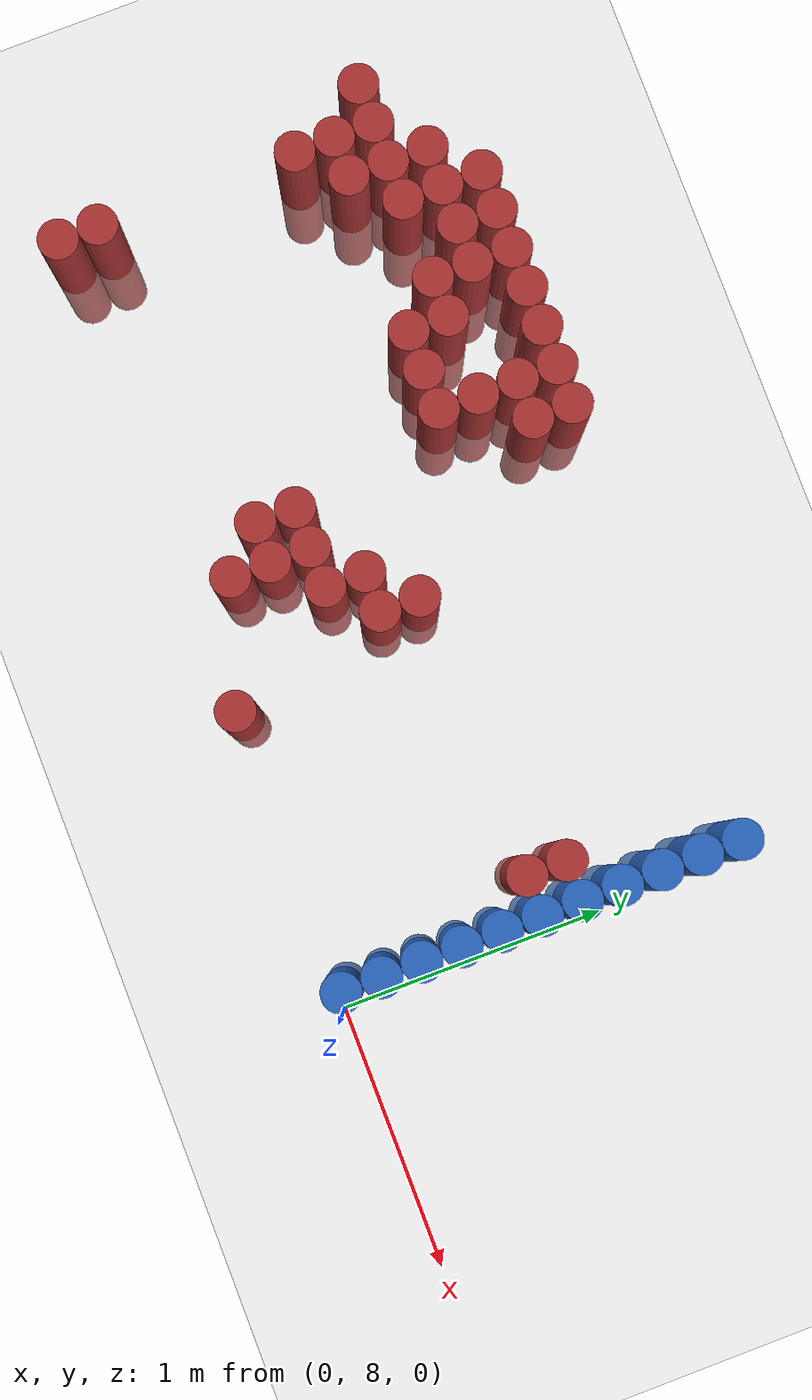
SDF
<sdf version="1.6">
 <world name="default">
  <model name="ground_plane">
   <static>1</static>
   <link name="link">
    <collision name="collision">
     <geometry><plane><normal>0 0 1</normal><size>100 100</size></plane></geometry>
     <surface><friction><ode><mu>100</mu><mu2>50</mu2></ode></friction></surface>
    </collision>
    <visual name="visual">
     <cast_shadows>0</cast_shadows>
     <geometry><plane><normal>0 0 1</normal><size>100 100</size></plane></geometry>
     <material>
      <script><uri>file://media/materials/scripts/gazebo.material</uri><name>Gazebo/Grey</name></script>
     </material>
    </visual>
   </link>
  </model>
  <model name="unit_cylinder_233">
   <static>1</static>
   <pose>-3.075000 9.225000 0.000000 0.000000 0.000000 0.000000</pose>
   <link name="link">
    <inertial>
     <mass>1</mass>
     <inertia><ixx>0.145833</ixx><ixy>0</ixy><ixz>0</ixz><iyy>0.145833</iyy><iyz>0</iyz><izz>0.125</izz></inertia>
    </inertial>
    <collision name="collision">
     <geometry><cylinder><radius>0.075000</radius><length>1</length></cylinder></geometry>
    </collision>
    <visual name="visual">
     <geometry><cylinder><radius>0.075000</radius><length>1</length></cylinder></geometry>
     <material>
      <ambient>0.648000 0.192000 0.192000 1</ambient>
      <diffuse>0.648000 0.192000 0.192000 1</diffuse>
     </material>
     <material>
      <script><name>Gazebo/Grey</name><uri>file://media/materials/scripts/gazebo.material</uri></script>
     </material>
    </visual>
   </link>
  </model>
  <model name="unit_cylinder_244">
   <static>1</static>
   <pose>-2.925000 8.025000 0.000000 0.000000 0.000000 0.000000</pose>
   <link name="link">
    <inertial>
     <mass>1</mass>
     <inertia><ixx>0.145833</ixx><ixy>0</ixy><ixz>0</ixz><iyy>0.145833</iyy><iyz>0</iyz><izz>0.125</izz></inertia>
    </inertial>
    <collision name="collision">
     <geometry><cylinder><radius>0.075000</radius><length>1</length></cylinder></geometry>
    </collision>
    <visual name="visual">
     <geometry><cylinder><radius>0.075000</radius><length>1</length></cylinder></geometry>
     <material>
      <ambient>0.648000 0.192000 0.192000 1</ambient>
      <diffuse>0.648000 0.192000 0.192000 1</diffuse>
     </material>
     <material>
      <script><name>Gazebo/Grey</name><uri>file://media/materials/scripts/gazebo.material</uri></script>
     </material>
    </visual>
   </link>
  </model>
  <model name="unit_cylinder_245">
   <static>1</static>
   <pose>-2.925000 8.175000 0.000000 0.000000 0.000000 0.000000</pose>
   <link name="link">
    <inertial>
     <mass>1</mass>
     <inertia><ixx>0.145833</ixx><ixy>0</ixy><ixz>0</ixz><iyy>0.145833</iyy><iyz>0</iyz><izz>0.125</izz></inertia>
    </inertial>
    <collision name="collision">
     <geometry><cylinder><radius>0.075000</radius><length>1</length></cylinder></geometry>
    </collision>
    <visual name="visual">
     <geometry><cylinder><radius>0.075000</radius><length>1</length></cylinder></geometry>
     <material>
      <ambient>0.648000 0.192000 0.192000 1</ambient>
      <diffuse>0.648000 0.192000 0.192000 1</diffuse>
     </material>
     <material>
      <script><name>Gazebo/Grey</name><uri>file://media/materials/scripts/gazebo.material</uri></script>
     </material>
    </visual>
   </link>
  </model>
  <model name="unit_cylinder_246">
   <static>1</static>
   <pose>-2.925000 8.925000 0.000000 0.000000 0.000000 0.000000</pose>
   <link name="link">
    <inertial>
     <mass>1</mass>
     <inertia><ixx>0.145833</ixx><ixy>0</ixy><ixz>0</ixz><iyy>0.145833</iyy><iyz>0</iyz><izz>0.125</izz></inertia>
    </inertial>
    <collision name="collision">
     <geometry><cylinder><radius>0.075000</radius><length>1</length></cylinder></geometry>
    </collision>
    <visual name="visual">
     <geometry><cylinder><radius>0.075000</radius><length>1</length></cylinder></geometry>
     <material>
      <ambient>0.648000 0.192000 0.192000 1</ambient>
      <diffuse>0.648000 0.192000 0.192000 1</diffuse>
     </material>
     <material>
      <script><name>Gazebo/Grey</name><uri>file://media/materials/scripts/gazebo.material</uri></script>
     </material>
    </visual>
   </link>
  </model>
  <model name="unit_cylinder_247">
   <static>1</static>
   <pose>-2.925000 9.075000 0.000000 0.000000 0.000000 0.000000</pose>
   <link name="link">
    <inertial>
     <mass>1</mass>
     <inertia><ixx>0.145833</ixx><ixy>0</ixy><ixz>0</ixz><iyy>0.145833</iyy><iyz>0</iyz><izz>0.125</izz></inertia>
    </inertial>
    <collision name="collision">
     <geometry><cylinder><radius>0.075000</radius><length>1</length></cylinder></geometry>
    </collision>
    <visual name="visual">
     <geometry><cylinder><radius>0.075000</radius><length>1</length></cylinder></geometry>
     <material>
      <ambient>0.648000 0.192000 0.192000 1</ambient>
      <diffuse>0.648000 0.192000 0.192000 1</diffuse>
     </material>
     <material>
      <script><name>Gazebo/Grey</name><uri>file://media/materials/scripts/gazebo.material</uri></script>
     </material>
    </visual>
   </link>
  </model>
  <model name="unit_cylinder_248">
   <static>1</static>
   <pose>-2.925000 9.225000 0.000000 0.000000 0.000000 0.000000</pose>
   <link name="link">
    <inertial>
     <mass>1</mass>
     <inertia><ixx>0.145833</ixx><ixy>0</ixy><ixz>0</ixz><iyy>0.145833</iyy><iyz>0</iyz><izz>0.125</izz></inertia>
    </inertial>
    <collision name="collision">
     <geometry><cylinder><radius>0.075000</radius><length>1</length></cylinder></geometry>
    </collision>
    <visual name="visual">
     <geometry><cylinder><radius>0.075000</radius><length>1</length></cylinder></geometry>
     <material>
      <ambient>0.648000 0.192000 0.192000 1</ambient>
      <diffuse>0.648000 0.192000 0.192000 1</diffuse>
     </material>
     <material>
      <script><name>Gazebo/Grey</name><uri>file://media/materials/scripts/gazebo.material</uri></script>
     </material>
    </visual>
   </link>
  </model>
  <model name="unit_cylinder_254">
   <static>1</static>
   <pose>-2.775000 9.075000 0.000000 0.000000 0.000000 0.000000</pose>
   <link name="link">
    <inertial>
     <mass>1</mass>
     <inertia><ixx>0.145833</ixx><ixy>0</ixy><ixz>0</ixz><iyy>0.145833</iyy><iyz>0</iyz><izz>0.125</izz></inertia>
    </inertial>
    <collision name="collision">
     <geometry><cylinder><radius>0.075000</radius><length>1</length></cylinder></geometry>
    </collision>
    <visual name="visual">
     <geometry><cylinder><radius>0.075000</radius><length>1</length></cylinder></geometry>
     <material>
      <ambient>0.648000 0.192000 0.192000 1</ambient>
      <diffuse>0.648000 0.192000 0.192000 1</diffuse>
     </material>
     <material>
      <script><name>Gazebo/Grey</name><uri>file://media/materials/scripts/gazebo.material</uri></script>
     </material>
    </visual>
   </link>
  </model>
  <model name="unit_cylinder_255">
   <static>1</static>
   <pose>-2.775000 9.225000 0.000000 0.000000 0.000000 0.000000</pose>
   <link name="link">
    <inertial>
     <mass>1</mass>
     <inertia><ixx>0.145833</ixx><ixy>0</ixy><ixz>0</ixz><iyy>0.145833</iyy><iyz>0</iyz><izz>0.125</izz></inertia>
    </inertial>
    <collision name="collision">
     <geometry><cylinder><radius>0.075000</radius><length>1</length></cylinder></geometry>
    </collision>
    <visual name="visual">
     <geometry><cylinder><radius>0.075000</radius><length>1</length></cylinder></geometry>
     <material>
      <ambient>0.648000 0.192000 0.192000 1</ambient>
      <diffuse>0.648000 0.192000 0.192000 1</diffuse>
     </material>
     <material>
      <script><name>Gazebo/Grey</name><uri>file://media/materials/scripts/gazebo.material</uri></script>
     </material>
    </visual>
   </link>
  </model>
  <model name="unit_cylinder_256">
   <static>1</static>
   <pose>-2.775000 9.375000 0.000000 0.000000 0.000000 0.000000</pose>
   <link name="link">
    <inertial>
     <mass>1</mass>
     <inertia><ixx>0.145833</ixx><ixy>0</ixy><ixz>0</ixz><iyy>0.145833</iyy><iyz>0</iyz><izz>0.125</izz></inertia>
    </inertial>
    <collision name="collision">
     <geometry><cylinder><radius>0.075000</radius><length>1</length></cylinder></geometry>
    </collision>
    <visual name="visual">
     <geometry><cylinder><radius>0.075000</radius><length>1</length></cylinder></geometry>
     <material>
      <ambient>0.648000 0.192000 0.192000 1</ambient>
      <diffuse>0.648000 0.192000 0.192000 1</diffuse>
     </material>
     <material>
      <script><name>Gazebo/Grey</name><uri>file://media/materials/scripts/gazebo.material</uri></script>
     </material>
    </visual>
   </link>
  </model>
  <model name="unit_cylinder_260">
   <static>1</static>
   <pose>-2.625000 9.225000 0.000000 0.000000 0.000000 0.000000</pose>
   <link name="link">
    <inertial>
     <mass>1</mass>
     <inertia><ixx>0.145833</ixx><ixy>0</ixy><ixz>0</ixz><iyy>0.145833</iyy><iyz>0</iyz><izz>0.125</izz></inertia>
    </inertial>
    <collision name="collision">
     <geometry><cylinder><radius>0.075000</radius><length>1</length></cylinder></geometry>
    </collision>
    <visual name="visual">
     <geometry><cylinder><radius>0.075000</radius><length>1</length></cylinder></geometry>
     <material>
      <ambient>0.648000 0.192000 0.192000 1</ambient>
      <diffuse>0.648000 0.192000 0.192000 1</diffuse>
     </material>
     <material>
      <script><name>Gazebo/Grey</name><uri>file://media/materials/scripts/gazebo.material</uri></script>
     </material>
    </visual>
   </link>
  </model>
  <model name="unit_cylinder_261">
   <static>1</static>
   <pose>-2.625000 9.375000 0.000000 0.000000 0.000000 0.000000</pose>
   <link name="link">
    <inertial>
     <mass>1</mass>
     <inertia><ixx>0.145833</ixx><ixy>0</ixy><ixz>0</ixz><iyy>0.145833</iyy><iyz>0</iyz><izz>0.125</izz></inertia>
    </inertial>
    <collision name="collision">
     <geometry><cylinder><radius>0.075000</radius><length>1</length></cylinder></geometry>
    </collision>
    <visual name="visual">
     <geometry><cylinder><radius>0.075000</radius><length>1</length></cylinder></geometry>
     <material>
      <ambient>0.648000 0.192000 0.192000 1</ambient>
      <diffuse>0.648000 0.192000 0.192000 1</diffuse>
     </material>
     <material>
      <script><name>Gazebo/Grey</name><uri>file://media/materials/scripts/gazebo.material</uri></script>
     </material>
    </visual>
   </link>
  </model>
  <model name="unit_cylinder_262">
   <static>1</static>
   <pose>-2.625000 9.525000 0.000000 0.000000 0.000000 0.000000</pose>
   <link name="link">
    <inertial>
     <mass>1</mass>
     <inertia><ixx>0.145833</ixx><ixy>0</ixy><ixz>0</ixz><iyy>0.145833</iyy><iyz>0</iyz><izz>0.125</izz></inertia>
    </inertial>
    <collision name="collision">
     <geometry><cylinder><radius>0.075000</radius><length>1</length></cylinder></geometry>
    </collision>
    <visual name="visual">
     <geometry><cylinder><radius>0.075000</radius><length>1</length></cylinder></geometry>
     <material>
      <ambient>0.648000 0.192000 0.192000 1</ambient>
      <diffuse>0.648000 0.192000 0.192000 1</diffuse>
     </material>
     <material>
      <script><name>Gazebo/Grey</name><uri>file://media/materials/scripts/gazebo.material</uri></script>
     </material>
    </visual>
   </link>
  </model>
  <model name="unit_cylinder_266">
   <static>1</static>
   <pose>-2.475000 9.375000 0.000000 0.000000 0.000000 0.000000</pose>
   <link name="link">
    <inertial>
     <mass>1</mass>
     <inertia><ixx>0.145833</ixx><ixy>0</ixy><ixz>0</ixz><iyy>0.145833</iyy><iyz>0</iyz><izz>0.125</izz></inertia>
    </inertial>
    <collision name="collision">
     <geometry><cylinder><radius>0.075000</radius><length>1</length></cylinder></geometry>
    </collision>
    <visual name="visual">
     <geometry><cylinder><radius>0.075000</radius><length>1</length></cylinder></geometry>
     <material>
      <ambient>0.648000 0.192000 0.192000 1</ambient>
      <diffuse>0.648000 0.192000 0.192000 1</diffuse>
     </material>
     <material>
      <script><name>Gazebo/Grey</name><uri>file://media/materials/scripts/gazebo.material</uri></script>
     </material>
    </visual>
   </link>
  </model>
  <model name="unit_cylinder_267">
   <static>1</static>
   <pose>-2.475000 9.525000 0.000000 0.000000 0.000000 0.000000</pose>
   <link name="link">
    <inertial>
     <mass>1</mass>
     <inertia><ixx>0.145833</ixx><ixy>0</ixy><ixz>0</ixz><iyy>0.145833</iyy><iyz>0</iyz><izz>0.125</izz></inertia>
    </inertial>
    <collision name="collision">
     <geometry><cylinder><radius>0.075000</radius><length>1</length></cylinder></geometry>
    </collision>
    <visual name="visual">
     <geometry><cylinder><radius>0.075000</radius><length>1</length></cylinder></geometry>
     <material>
      <ambient>0.648000 0.192000 0.192000 1</ambient>
      <diffuse>0.648000 0.192000 0.192000 1</diffuse>
     </material>
     <material>
      <script><name>Gazebo/Grey</name><uri>file://media/materials/scripts/gazebo.material</uri></script>
     </material>
    </visual>
   </link>
  </model>
  <model name="unit_cylinder_270">
   <static>1</static>
   <pose>-2.325000 9.225000 0.000000 0.000000 0.000000 0.000000</pose>
   <link name="link">
    <inertial>
     <mass>1</mass>
     <inertia><ixx>0.145833</ixx><ixy>0</ixy><ixz>0</ixz><iyy>0.145833</iyy><iyz>0</iyz><izz>0.125</izz></inertia>
    </inertial>
    <collision name="collision">
     <geometry><cylinder><radius>0.075000</radius><length>1</length></cylinder></geometry>
    </collision>
    <visual name="visual">
     <geometry><cylinder><radius>0.075000</radius><length>1</length></cylinder></geometry>
     <material>
      <ambient>0.648000 0.192000 0.192000 1</ambient>
      <diffuse>0.648000 0.192000 0.192000 1</diffuse>
     </material>
     <material>
      <script><name>Gazebo/Grey</name><uri>file://media/materials/scripts/gazebo.material</uri></script>
     </material>
    </visual>
   </link>
  </model>
  <model name="unit_cylinder_271">
   <static>1</static>
   <pose>-2.325000 9.375000 0.000000 0.000000 0.000000 0.000000</pose>
   <link name="link">
    <inertial>
     <mass>1</mass>
     <inertia><ixx>0.145833</ixx><ixy>0</ixy><ixz>0</ixz><iyy>0.145833</iyy><iyz>0</iyz><izz>0.125</izz></inertia>
    </inertial>
    <collision name="collision">
     <geometry><cylinder><radius>0.075000</radius><length>1</length></cylinder></geometry>
    </collision>
    <visual name="visual">
     <geometry><cylinder><radius>0.075000</radius><length>1</length></cylinder></geometry>
     <material>
      <ambient>0.648000 0.192000 0.192000 1</ambient>
      <diffuse>0.648000 0.192000 0.192000 1</diffuse>
     </material>
     <material>
      <script><name>Gazebo/Grey</name><uri>file://media/materials/scripts/gazebo.material</uri></script>
     </material>
    </visual>
   </link>
  </model>
  <model name="unit_cylinder_272">
   <static>1</static>
   <pose>-2.325000 9.525000 0.000000 0.000000 0.000000 0.000000</pose>
   <link name="link">
    <inertial>
     <mass>1</mass>
     <inertia><ixx>0.145833</ixx><ixy>0</ixy><ixz>0</ixz><iyy>0.145833</iyy><iyz>0</iyz><izz>0.125</izz></inertia>
    </inertial>
    <collision name="collision">
     <geometry><cylinder><radius>0.075000</radius><length>1</length></cylinder></geometry>
    </collision>
    <visual name="visual">
     <geometry><cylinder><radius>0.075000</radius><length>1</length></cylinder></geometry>
     <material>
      <ambient>0.648000 0.192000 0.192000 1</ambient>
      <diffuse>0.648000 0.192000 0.192000 1</diffuse>
     </material>
     <material>
      <script><name>Gazebo/Grey</name><uri>file://media/materials/scripts/gazebo.material</uri></script>
     </material>
    </visual>
   </link>
  </model>
  <model name="unit_cylinder_274">
   <static>1</static>
   <pose>-2.175000 9.075000 0.000000 0.000000 0.000000 0.000000</pose>
   <link name="link">
    <inertial>
     <mass>1</mass>
     <inertia><ixx>0.145833</ixx><ixy>0</ixy><ixz>0</ixz><iyy>0.145833</iyy><iyz>0</iyz><izz>0.125</izz></inertia>
    </inertial>
    <collision name="collision">
     <geometry><cylinder><radius>0.075000</radius><length>1</length></cylinder></geometry>
    </collision>
    <visual name="visual">
     <geometry><cylinder><radius>0.075000</radius><length>1</length></cylinder></geometry>
     <material>
      <ambient>0.648000 0.192000 0.192000 1</ambient>
      <diffuse>0.648000 0.192000 0.192000 1</diffuse>
     </material>
     <material>
      <script><name>Gazebo/Grey</name><uri>file://media/materials/scripts/gazebo.material</uri></script>
     </material>
    </visual>
   </link>
  </model>
  <model name="unit_cylinder_275">
   <static>1</static>
   <pose>-2.175000 9.225000 0.000000 0.000000 0.000000 0.000000</pose>
   <link name="link">
    <inertial>
     <mass>1</mass>
     <inertia><ixx>0.145833</ixx><ixy>0</ixy><ixz>0</ixz><iyy>0.145833</iyy><iyz>0</iyz><izz>0.125</izz></inertia>
    </inertial>
    <collision name="collision">
     <geometry><cylinder><radius>0.075000</radius><length>1</length></cylinder></geometry>
    </collision>
    <visual name="visual">
     <geometry><cylinder><radius>0.075000</radius><length>1</length></cylinder></geometry>
     <material>
      <ambient>0.648000 0.192000 0.192000 1</ambient>
      <diffuse>0.648000 0.192000 0.192000 1</diffuse>
     </material>
     <material>
      <script><name>Gazebo/Grey</name><uri>file://media/materials/scripts/gazebo.material</uri></script>
     </material>
    </visual>
   </link>
  </model>
  <model name="unit_cylinder_276">
   <static>1</static>
   <pose>-2.175000 9.525000 0.000000 0.000000 0.000000 0.000000</pose>
   <link name="link">
    <inertial>
     <mass>1</mass>
     <inertia><ixx>0.145833</ixx><ixy>0</ixy><ixz>0</ixz><iyy>0.145833</iyy><iyz>0</iyz><izz>0.125</izz></inertia>
    </inertial>
    <collision name="collision">
     <geometry><cylinder><radius>0.075000</radius><length>1</length></cylinder></geometry>
    </collision>
    <visual name="visual">
     <geometry><cylinder><radius>0.075000</radius><length>1</length></cylinder></geometry>
     <material>
      <ambient>0.648000 0.192000 0.192000 1</ambient>
      <diffuse>0.648000 0.192000 0.192000 1</diffuse>
     </material>
     <material>
      <script><name>Gazebo/Grey</name><uri>file://media/materials/scripts/gazebo.material</uri></script>
     </material>
    </visual>
   </link>
  </model>
  <model name="unit_cylinder_280">
   <static>1</static>
   <pose>-2.025000 9.075000 0.000000 0.000000 0.000000 0.000000</pose>
   <link name="link">
    <inertial>
     <mass>1</mass>
     <inertia><ixx>0.145833</ixx><ixy>0</ixy><ixz>0</ixz><iyy>0.145833</iyy><iyz>0</iyz><izz>0.125</izz></inertia>
    </inertial>
    <collision name="collision">
     <geometry><cylinder><radius>0.075000</radius><length>1</length></cylinder></geometry>
    </collision>
    <visual name="visual">
     <geometry><cylinder><radius>0.075000</radius><length>1</length></cylinder></geometry>
     <material>
      <ambient>0.648000 0.192000 0.192000 1</ambient>
      <diffuse>0.648000 0.192000 0.192000 1</diffuse>
     </material>
     <material>
      <script><name>Gazebo/Grey</name><uri>file://media/materials/scripts/gazebo.material</uri></script>
     </material>
    </visual>
   </link>
  </model>
  <model name="unit_cylinder_281">
   <static>1</static>
   <pose>-2.025000 9.525000 0.000000 0.000000 0.000000 0.000000</pose>
   <link name="link">
    <inertial>
     <mass>1</mass>
     <inertia><ixx>0.145833</ixx><ixy>0</ixy><ixz>0</ixz><iyy>0.145833</iyy><iyz>0</iyz><izz>0.125</izz></inertia>
    </inertial>
    <collision name="collision">
     <geometry><cylinder><radius>0.075000</radius><length>1</length></cylinder></geometry>
    </collision>
    <visual name="visual">
     <geometry><cylinder><radius>0.075000</radius><length>1</length></cylinder></geometry>
     <material>
      <ambient>0.648000 0.192000 0.192000 1</ambient>
      <diffuse>0.648000 0.192000 0.192000 1</diffuse>
     </material>
     <material>
      <script><name>Gazebo/Grey</name><uri>file://media/materials/scripts/gazebo.material</uri></script>
     </material>
    </visual>
   </link>
  </model>
  <model name="unit_cylinder_286">
   <static>1</static>
   <pose>-1.875000 9.075000 0.000000 0.000000 0.000000 0.000000</pose>
   <link name="link">
    <inertial>
     <mass>1</mass>
     <inertia><ixx>0.145833</ixx><ixy>0</ixy><ixz>0</ixz><iyy>0.145833</iyy><iyz>0</iyz><izz>0.125</izz></inertia>
    </inertial>
    <collision name="collision">
     <geometry><cylinder><radius>0.075000</radius><length>1</length></cylinder></geometry>
    </collision>
    <visual name="visual">
     <geometry><cylinder><radius>0.075000</radius><length>1</length></cylinder></geometry>
     <material>
      <ambient>0.648000 0.192000 0.192000 1</ambient>
      <diffuse>0.648000 0.192000 0.192000 1</diffuse>
     </material>
     <material>
      <script><name>Gazebo/Grey</name><uri>file://media/materials/scripts/gazebo.material</uri></script>
     </material>
    </visual>
   </link>
  </model>
  <model name="unit_cylinder_287">
   <static>1</static>
   <pose>-1.875000 9.225000 0.000000 0.000000 0.000000 0.000000</pose>
   <link name="link">
    <inertial>
     <mass>1</mass>
     <inertia><ixx>0.145833</ixx><ixy>0</ixy><ixz>0</ixz><iyy>0.145833</iyy><iyz>0</iyz><izz>0.125</izz></inertia>
    </inertial>
    <collision name="collision">
     <geometry><cylinder><radius>0.075000</radius><length>1</length></cylinder></geometry>
    </collision>
    <visual name="visual">
     <geometry><cylinder><radius>0.075000</radius><length>1</length></cylinder></geometry>
     <material>
      <ambient>0.648000 0.192000 0.192000 1</ambient>
      <diffuse>0.648000 0.192000 0.192000 1</diffuse>
     </material>
     <material>
      <script><name>Gazebo/Grey</name><uri>file://media/materials/scripts/gazebo.material</uri></script>
     </material>
    </visual>
   </link>
  </model>
  <model name="unit_cylinder_288">
   <static>1</static>
   <pose>-1.875000 9.375000 0.000000 0.000000 0.000000 0.000000</pose>
   <link name="link">
    <inertial>
     <mass>1</mass>
     <inertia><ixx>0.145833</ixx><ixy>0</ixy><ixz>0</ixz><iyy>0.145833</iyy><iyz>0</iyz><izz>0.125</izz></inertia>
    </inertial>
    <collision name="collision">
     <geometry><cylinder><radius>0.075000</radius><length>1</length></cylinder></geometry>
    </collision>
    <visual name="visual">
     <geometry><cylinder><radius>0.075000</radius><length>1</length></cylinder></geometry>
     <material>
      <ambient>0.648000 0.192000 0.192000 1</ambient>
      <diffuse>0.648000 0.192000 0.192000 1</diffuse>
     </material>
     <material>
      <script><name>Gazebo/Grey</name><uri>file://media/materials/scripts/gazebo.material</uri></script>
     </material>
    </visual>
   </link>
  </model>
  <model name="unit_cylinder_289">
   <static>1</static>
   <pose>-1.875000 9.525000 0.000000 0.000000 0.000000 0.000000</pose>
   <link name="link">
    <inertial>
     <mass>1</mass>
     <inertia><ixx>0.145833</ixx><ixy>0</ixy><ixz>0</ixz><iyy>0.145833</iyy><iyz>0</iyz><izz>0.125</izz></inertia>
    </inertial>
    <collision name="collision">
     <geometry><cylinder><radius>0.075000</radius><length>1</length></cylinder></geometry>
    </collision>
    <visual name="visual">
     <geometry><cylinder><radius>0.075000</radius><length>1</length></cylinder></geometry>
     <material>
      <ambient>0.648000 0.192000 0.192000 1</ambient>
      <diffuse>0.648000 0.192000 0.192000 1</diffuse>
     </material>
     <material>
      <script><name>Gazebo/Grey</name><uri>file://media/materials/scripts/gazebo.material</uri></script>
     </material>
    </visual>
   </link>
  </model>
  <model name="unit_cylinder_293">
   <static>1</static>
   <pose>-1.725000 8.325000 0.000000 0.000000 0.000000 0.000000</pose>
   <link name="link">
    <inertial>
     <mass>1</mass>
     <inertia><ixx>0.145833</ixx><ixy>0</ixy><ixz>0</ixz><iyy>0.145833</iyy><iyz>0</iyz><izz>0.125</izz></inertia>
    </inertial>
    <collision name="collision">
     <geometry><cylinder><radius>0.075000</radius><length>1</length></cylinder></geometry>
    </collision>
    <visual name="visual">
     <geometry><cylinder><radius>0.075000</radius><length>1</length></cylinder></geometry>
     <material>
      <ambient>0.648000 0.192000 0.192000 1</ambient>
      <diffuse>0.648000 0.192000 0.192000 1</diffuse>
     </material>
     <material>
      <script><name>Gazebo/Grey</name><uri>file://media/materials/scripts/gazebo.material</uri></script>
     </material>
    </visual>
   </link>
  </model>
  <model name="unit_cylinder_294">
   <static>1</static>
   <pose>-1.725000 8.475000 0.000000 0.000000 0.000000 0.000000</pose>
   <link name="link">
    <inertial>
     <mass>1</mass>
     <inertia><ixx>0.145833</ixx><ixy>0</ixy><ixz>0</ixz><iyy>0.145833</iyy><iyz>0</iyz><izz>0.125</izz></inertia>
    </inertial>
    <collision name="collision">
     <geometry><cylinder><radius>0.075000</radius><length>1</length></cylinder></geometry>
    </collision>
    <visual name="visual">
     <geometry><cylinder><radius>0.075000</radius><length>1</length></cylinder></geometry>
     <material>
      <ambient>0.648000 0.192000 0.192000 1</ambient>
      <diffuse>0.648000 0.192000 0.192000 1</diffuse>
     </material>
     <material>
      <script><name>Gazebo/Grey</name><uri>file://media/materials/scripts/gazebo.material</uri></script>
     </material>
    </visual>
   </link>
  </model>
  <model name="unit_cylinder_295">
   <static>1</static>
   <pose>-1.725000 9.375000 0.000000 0.000000 0.000000 0.000000</pose>
   <link name="link">
    <inertial>
     <mass>1</mass>
     <inertia><ixx>0.145833</ixx><ixy>0</ixy><ixz>0</ixz><iyy>0.145833</iyy><iyz>0</iyz><izz>0.125</izz></inertia>
    </inertial>
    <collision name="collision">
     <geometry><cylinder><radius>0.075000</radius><length>1</length></cylinder></geometry>
    </collision>
    <visual name="visual">
     <geometry><cylinder><radius>0.075000</radius><length>1</length></cylinder></geometry>
     <material>
      <ambient>0.648000 0.192000 0.192000 1</ambient>
      <diffuse>0.648000 0.192000 0.192000 1</diffuse>
     </material>
     <material>
      <script><name>Gazebo/Grey</name><uri>file://media/materials/scripts/gazebo.material</uri></script>
     </material>
    </visual>
   </link>
  </model>
  <model name="unit_cylinder_296">
   <static>1</static>
   <pose>-1.725000 9.525000 0.000000 0.000000 0.000000 0.000000</pose>
   <link name="link">
    <inertial>
     <mass>1</mass>
     <inertia><ixx>0.145833</ixx><ixy>0</ixy><ixz>0</ixz><iyy>0.145833</iyy><iyz>0</iyz><izz>0.125</izz></inertia>
    </inertial>
    <collision name="collision">
     <geometry><cylinder><radius>0.075000</radius><length>1</length></cylinder></geometry>
    </collision>
    <visual name="visual">
     <geometry><cylinder><radius>0.075000</radius><length>1</length></cylinder></geometry>
     <material>
      <ambient>0.648000 0.192000 0.192000 1</ambient>
      <diffuse>0.648000 0.192000 0.192000 1</diffuse>
     </material>
     <material>
      <script><name>Gazebo/Grey</name><uri>file://media/materials/scripts/gazebo.material</uri></script>
     </material>
    </visual>
   </link>
  </model>
  <model name="unit_cylinder_298">
   <static>1</static>
   <pose>-1.575000 8.175000 0.000000 0.000000 0.000000 0.000000</pose>
   <link name="link">
    <inertial>
     <mass>1</mass>
     <inertia><ixx>0.145833</ixx><ixy>0</ixy><ixz>0</ixz><iyy>0.145833</iyy><iyz>0</iyz><izz>0.125</izz></inertia>
    </inertial>
    <collision name="collision">
     <geometry><cylinder><radius>0.075000</radius><length>1</length></cylinder></geometry>
    </collision>
    <visual name="visual">
     <geometry><cylinder><radius>0.075000</radius><length>1</length></cylinder></geometry>
     <material>
      <ambient>0.648000 0.192000 0.192000 1</ambient>
      <diffuse>0.648000 0.192000 0.192000 1</diffuse>
     </material>
     <material>
      <script><name>Gazebo/Grey</name><uri>file://media/materials/scripts/gazebo.material</uri></script>
     </material>
    </visual>
   </link>
  </model>
  <model name="unit_cylinder_299">
   <static>1</static>
   <pose>-1.575000 8.325000 0.000000 0.000000 0.000000 0.000000</pose>
   <link name="link">
    <inertial>
     <mass>1</mass>
     <inertia><ixx>0.145833</ixx><ixy>0</ixy><ixz>0</ixz><iyy>0.145833</iyy><iyz>0</iyz><izz>0.125</izz></inertia>
    </inertial>
    <collision name="collision">
     <geometry><cylinder><radius>0.075000</radius><length>1</length></cylinder></geometry>
    </collision>
    <visual name="visual">
     <geometry><cylinder><radius>0.075000</radius><length>1</length></cylinder></geometry>
     <material>
      <ambient>0.648000 0.192000 0.192000 1</ambient>
      <diffuse>0.648000 0.192000 0.192000 1</diffuse>
     </material>
     <material>
      <script><name>Gazebo/Grey</name><uri>file://media/materials/scripts/gazebo.material</uri></script>
     </material>
    </visual>
   </link>
  </model>
  <model name="unit_cylinder_300">
   <static>1</static>
   <pose>-1.575000 8.475000 0.000000 0.000000 0.000000 0.000000</pose>
   <link name="link">
    <inertial>
     <mass>1</mass>
     <inertia><ixx>0.145833</ixx><ixy>0</ixy><ixz>0</ixz><iyy>0.145833</iyy><iyz>0</iyz><izz>0.125</izz></inertia>
    </inertial>
    <collision name="collision">
     <geometry><cylinder><radius>0.075000</radius><length>1</length></cylinder></geometry>
    </collision>
    <visual name="visual">
     <geometry><cylinder><radius>0.075000</radius><length>1</length></cylinder></geometry>
     <material>
      <ambient>0.648000 0.192000 0.192000 1</ambient>
      <diffuse>0.648000 0.192000 0.192000 1</diffuse>
     </material>
     <material>
      <script><name>Gazebo/Grey</name><uri>file://media/materials/scripts/gazebo.material</uri></script>
     </material>
    </visual>
   </link>
  </model>
  <model name="unit_cylinder_304">
   <static>1</static>
   <pose>-1.425000 8.475000 0.000000 0.000000 0.000000 0.000000</pose>
   <link name="link">
    <inertial>
     <mass>1</mass>
     <inertia><ixx>0.145833</ixx><ixy>0</ixy><ixz>0</ixz><iyy>0.145833</iyy><iyz>0</iyz><izz>0.125</izz></inertia>
    </inertial>
    <collision name="collision">
     <geometry><cylinder><radius>0.075000</radius><length>1</length></cylinder></geometry>
    </collision>
    <visual name="visual">
     <geometry><cylinder><radius>0.075000</radius><length>1</length></cylinder></geometry>
     <material>
      <ambient>0.648000 0.192000 0.192000 1</ambient>
      <diffuse>0.648000 0.192000 0.192000 1</diffuse>
     </material>
     <material>
      <script><name>Gazebo/Grey</name><uri>file://media/materials/scripts/gazebo.material</uri></script>
     </material>
    </visual>
   </link>
  </model>
  <model name="unit_cylinder_305">
   <static>1</static>
   <pose>-1.425000 8.625000 0.000000 0.000000 0.000000 0.000000</pose>
   <link name="link">
    <inertial>
     <mass>1</mass>
     <inertia><ixx>0.145833</ixx><ixy>0</ixy><ixz>0</ixz><iyy>0.145833</iyy><iyz>0</iyz><izz>0.125</izz></inertia>
    </inertial>
    <collision name="collision">
     <geometry><cylinder><radius>0.075000</radius><length>1</length></cylinder></geometry>
    </collision>
    <visual name="visual">
     <geometry><cylinder><radius>0.075000</radius><length>1</length></cylinder></geometry>
     <material>
      <ambient>0.648000 0.192000 0.192000 1</ambient>
      <diffuse>0.648000 0.192000 0.192000 1</diffuse>
     </material>
     <material>
      <script><name>Gazebo/Grey</name><uri>file://media/materials/scripts/gazebo.material</uri></script>
     </material>
    </visual>
   </link>
  </model>
  <model name="unit_cylinder_310">
   <static>1</static>
   <pose>-1.275000 8.625000 0.000000 0.000000 0.000000 0.000000</pose>
   <link name="link">
    <inertial>
     <mass>1</mass>
     <inertia><ixx>0.145833</ixx><ixy>0</ixy><ixz>0</ixz><iyy>0.145833</iyy><iyz>0</iyz><izz>0.125</izz></inertia>
    </inertial>
    <collision name="collision">
     <geometry><cylinder><radius>0.075000</radius><length>1</length></cylinder></geometry>
    </collision>
    <visual name="visual">
     <geometry><cylinder><radius>0.075000</radius><length>1</length></cylinder></geometry>
     <material>
      <ambient>0.648000 0.192000 0.192000 1</ambient>
      <diffuse>0.648000 0.192000 0.192000 1</diffuse>
     </material>
     <material>
      <script><name>Gazebo/Grey</name><uri>file://media/materials/scripts/gazebo.material</uri></script>
     </material>
    </visual>
   </link>
  </model>
  <model name="unit_cylinder_311">
   <static>1</static>
   <pose>-1.275000 8.775000 0.000000 0.000000 0.000000 0.000000</pose>
   <link name="link">
    <inertial>
     <mass>1</mass>
     <inertia><ixx>0.145833</ixx><ixy>0</ixy><ixz>0</ixz><iyy>0.145833</iyy><iyz>0</iyz><izz>0.125</izz></inertia>
    </inertial>
    <collision name="collision">
     <geometry><cylinder><radius>0.075000</radius><length>1</length></cylinder></geometry>
    </collision>
    <visual name="visual">
     <geometry><cylinder><radius>0.075000</radius><length>1</length></cylinder></geometry>
     <material>
      <ambient>0.648000 0.192000 0.192000 1</ambient>
      <diffuse>0.648000 0.192000 0.192000 1</diffuse>
     </material>
     <material>
      <script><name>Gazebo/Grey</name><uri>file://media/materials/scripts/gazebo.material</uri></script>
     </material>
    </visual>
   </link>
  </model>
  <model name="unit_cylinder_313">
   <static>1</static>
   <pose>-1.125000 8.025000 0.000000 0.000000 0.000000 0.000000</pose>
   <link name="link">
    <inertial>
     <mass>1</mass>
     <inertia><ixx>0.145833</ixx><ixy>0</ixy><ixz>0</ixz><iyy>0.145833</iyy><iyz>0</iyz><izz>0.125</izz></inertia>
    </inertial>
    <collision name="collision">
     <geometry><cylinder><radius>0.075000</radius><length>1</length></cylinder></geometry>
    </collision>
    <visual name="visual">
     <geometry><cylinder><radius>0.075000</radius><length>1</length></cylinder></geometry>
     <material>
      <ambient>0.648000 0.192000 0.192000 1</ambient>
      <diffuse>0.648000 0.192000 0.192000 1</diffuse>
     </material>
     <material>
      <script><name>Gazebo/Grey</name><uri>file://media/materials/scripts/gazebo.material</uri></script>
     </material>
    </visual>
   </link>
  </model>
  <model name="unit_cylinder_324">
   <static>1</static>
   <pose>-0.225000 8.775000 0.000000 0.000000 0.000000 0.000000</pose>
   <link name="link">
    <inertial>
     <mass>1</mass>
     <inertia><ixx>0.145833</ixx><ixy>0</ixy><ixz>0</ixz><iyy>0.145833</iyy><iyz>0</iyz><izz>0.125</izz></inertia>
    </inertial>
    <collision name="collision">
     <geometry><cylinder><radius>0.075000</radius><length>1</length></cylinder></geometry>
    </collision>
    <visual name="visual">
     <geometry><cylinder><radius>0.075000</radius><length>1</length></cylinder></geometry>
     <material>
      <ambient>0.648000 0.192000 0.192000 1</ambient>
      <diffuse>0.648000 0.192000 0.192000 1</diffuse>
     </material>
     <material>
      <script><name>Gazebo/Grey</name><uri>file://media/materials/scripts/gazebo.material</uri></script>
     </material>
    </visual>
   </link>
  </model>
  <model name="unit_cylinder_325">
   <static>1</static>
   <pose>-0.225000 8.925000 0.000000 0.000000 0.000000 0.000000</pose>
   <link name="link">
    <inertial>
     <mass>1</mass>
     <inertia><ixx>0.145833</ixx><ixy>0</ixy><ixz>0</ixz><iyy>0.145833</iyy><iyz>0</iyz><izz>0.125</izz></inertia>
    </inertial>
    <collision name="collision">
     <geometry><cylinder><radius>0.075000</radius><length>1</length></cylinder></geometry>
    </collision>
    <visual name="visual">
     <geometry><cylinder><radius>0.075000</radius><length>1</length></cylinder></geometry>
     <material>
      <ambient>0.648000 0.192000 0.192000 1</ambient>
      <diffuse>0.648000 0.192000 0.192000 1</diffuse>
     </material>
     <material>
      <script><name>Gazebo/Grey</name><uri>file://media/materials/scripts/gazebo.material</uri></script>
     </material>
    </visual>
   </link>
  </model>
  <model name="unit_cylinder_345">
   <static>1</static>
   <pose>-0.075000 8.025000 0.000000 0.000000 0.000000 0.000000</pose>
   <link name="link">
    <inertial>
     <mass>1</mass>
     <inertia><ixx>0.145833</ixx><ixy>0</ixy><ixz>0</ixz><iyy>0.145833</iyy><iyz>0</iyz><izz>0.125</izz></inertia>
    </inertial>
    <collision name="collision">
     <geometry><cylinder><radius>0.075000</radius><length>1</length></cylinder></geometry>
    </collision>
    <visual name="visual">
     <geometry><cylinder><radius>0.075000</radius><length>1</length></cylinder></geometry>
     <material>
      <ambient>0.152000 0.379000 0.720000 1</ambient>
      <diffuse>0.152000 0.379000 0.720000 1</diffuse>
     </material>
     <material>
      <script><name>Gazebo/Grey</name><uri>file://media/materials/scripts/gazebo.material</uri></script>
     </material>
    </visual>
   </link>
  </model>
  <model name="unit_cylinder_346">
   <static>1</static>
   <pose>-0.075000 8.175000 0.000000 0.000000 0.000000 0.000000</pose>
   <link name="link">
    <inertial>
     <mass>1</mass>
     <inertia><ixx>0.145833</ixx><ixy>0</ixy><ixz>0</ixz><iyy>0.145833</iyy><iyz>0</iyz><izz>0.125</izz></inertia>
    </inertial>
    <collision name="collision">
     <geometry><cylinder><radius>0.075000</radius><length>1</length></cylinder></geometry>
    </collision>
    <visual name="visual">
     <geometry><cylinder><radius>0.075000</radius><length>1</length></cylinder></geometry>
     <material>
      <ambient>0.152000 0.379000 0.720000 1</ambient>
      <diffuse>0.152000 0.379000 0.720000 1</diffuse>
     </material>
     <material>
      <script><name>Gazebo/Grey</name><uri>file://media/materials/scripts/gazebo.material</uri></script>
     </material>
    </visual>
   </link>
  </model>
  <model name="unit_cylinder_347">
   <static>1</static>
   <pose>-0.075000 8.325000 0.000000 0.000000 0.000000 0.000000</pose>
   <link name="link">
    <inertial>
     <mass>1</mass>
     <inertia><ixx>0.145833</ixx><ixy>0</ixy><ixz>0</ixz><iyy>0.145833</iyy><iyz>0</iyz><izz>0.125</izz></inertia>
    </inertial>
    <collision name="collision">
     <geometry><cylinder><radius>0.075000</radius><length>1</length></cylinder></geometry>
    </collision>
    <visual name="visual">
     <geometry><cylinder><radius>0.075000</radius><length>1</length></cylinder></geometry>
     <material>
      <ambient>0.152000 0.379000 0.720000 1</ambient>
      <diffuse>0.152000 0.379000 0.720000 1</diffuse>
     </material>
     <material>
      <script><name>Gazebo/Grey</name><uri>file://media/materials/scripts/gazebo.material</uri></script>
     </material>
    </visual>
   </link>
  </model>
  <model name="unit_cylinder_348">
   <static>1</static>
   <pose>-0.075000 8.475000 0.000000 0.000000 0.000000 0.000000</pose>
   <link name="link">
    <inertial>
     <mass>1</mass>
     <inertia><ixx>0.145833</ixx><ixy>0</ixy><ixz>0</ixz><iyy>0.145833</iyy><iyz>0</iyz><izz>0.125</izz></inertia>
    </inertial>
    <collision name="collision">
     <geometry><cylinder><radius>0.075000</radius><length>1</length></cylinder></geometry>
    </collision>
    <visual name="visual">
     <geometry><cylinder><radius>0.075000</radius><length>1</length></cylinder></geometry>
     <material>
      <ambient>0.152000 0.379000 0.720000 1</ambient>
      <diffuse>0.152000 0.379000 0.720000 1</diffuse>
     </material>
     <material>
      <script><name>Gazebo/Grey</name><uri>file://media/materials/scripts/gazebo.material</uri></script>
     </material>
    </visual>
   </link>
  </model>
  <model name="unit_cylinder_349">
   <static>1</static>
   <pose>-0.075000 8.625000 0.000000 0.000000 0.000000 0.000000</pose>
   <link name="link">
    <inertial>
     <mass>1</mass>
     <inertia><ixx>0.145833</ixx><ixy>0</ixy><ixz>0</ixz><iyy>0.145833</iyy><iyz>0</iyz><izz>0.125</izz></inertia>
    </inertial>
    <collision name="collision">
     <geometry><cylinder><radius>0.075000</radius><length>1</length></cylinder></geometry>
    </collision>
    <visual name="visual">
     <geometry><cylinder><radius>0.075000</radius><length>1</length></cylinder></geometry>
     <material>
      <ambient>0.152000 0.379000 0.720000 1</ambient>
      <diffuse>0.152000 0.379000 0.720000 1</diffuse>
     </material>
     <material>
      <script><name>Gazebo/Grey</name><uri>file://media/materials/scripts/gazebo.material</uri></script>
     </material>
    </visual>
   </link>
  </model>
  <model name="unit_cylinder_350">
   <static>1</static>
   <pose>-0.075000 8.775000 0.000000 0.000000 0.000000 0.000000</pose>
   <link name="link">
    <inertial>
     <mass>1</mass>
     <inertia><ixx>0.145833</ixx><ixy>0</ixy><ixz>0</ixz><iyy>0.145833</iyy><iyz>0</iyz><izz>0.125</izz></inertia>
    </inertial>
    <collision name="collision">
     <geometry><cylinder><radius>0.075000</radius><length>1</length></cylinder></geometry>
    </collision>
    <visual name="visual">
     <geometry><cylinder><radius>0.075000</radius><length>1</length></cylinder></geometry>
     <material>
      <ambient>0.152000 0.379000 0.720000 1</ambient>
      <diffuse>0.152000 0.379000 0.720000 1</diffuse>
     </material>
     <material>
      <script><name>Gazebo/Grey</name><uri>file://media/materials/scripts/gazebo.material</uri></script>
     </material>
    </visual>
   </link>
  </model>
  <model name="unit_cylinder_351">
   <static>1</static>
   <pose>-0.075000 8.925000 0.000000 0.000000 0.000000 0.000000</pose>
   <link name="link">
    <inertial>
     <mass>1</mass>
     <inertia><ixx>0.145833</ixx><ixy>0</ixy><ixz>0</ixz><iyy>0.145833</iyy><iyz>0</iyz><izz>0.125</izz></inertia>
    </inertial>
    <collision name="collision">
     <geometry><cylinder><radius>0.075000</radius><length>1</length></cylinder></geometry>
    </collision>
    <visual name="visual">
     <geometry><cylinder><radius>0.075000</radius><length>1</length></cylinder></geometry>
     <material>
      <ambient>0.152000 0.379000 0.720000 1</ambient>
      <diffuse>0.152000 0.379000 0.720000 1</diffuse>
     </material>
     <material>
      <script><name>Gazebo/Grey</name><uri>file://media/materials/scripts/gazebo.material</uri></script>
     </material>
    </visual>
   </link>
  </model>
  <model name="unit_cylinder_352">
   <static>1</static>
   <pose>-0.075000 9.075000 0.000000 0.000000 0.000000 0.000000</pose>
   <link name="link">
    <inertial>
     <mass>1</mass>
     <inertia><ixx>0.145833</ixx><ixy>0</ixy><ixz>0</ixz><iyy>0.145833</iyy><iyz>0</iyz><izz>0.125</izz></inertia>
    </inertial>
    <collision name="collision">
     <geometry><cylinder><radius>0.075000</radius><length>1</length></cylinder></geometry>
    </collision>
    <visual name="visual">
     <geometry><cylinder><radius>0.075000</radius><length>1</length></cylinder></geometry>
     <material>
      <ambient>0.152000 0.379000 0.720000 1</ambient>
      <diffuse>0.152000 0.379000 0.720000 1</diffuse>
     </material>
     <material>
      <script><name>Gazebo/Grey</name><uri>file://media/materials/scripts/gazebo.material</uri></script>
     </material>
    </visual>
   </link>
  </model>
  <model name="unit_cylinder_353">
   <static>1</static>
   <pose>-0.075000 9.225000 0.000000 0.000000 0.000000 0.000000</pose>
   <link name="link">
    <inertial>
     <mass>1</mass>
     <inertia><ixx>0.145833</ixx><ixy>0</ixy><ixz>0</ixz><iyy>0.145833</iyy><iyz>0</iyz><izz>0.125</izz></inertia>
    </inertial>
    <collision name="collision">
     <geometry><cylinder><radius>0.075000</radius><length>1</length></cylinder></geometry>
    </collision>
    <visual name="visual">
     <geometry><cylinder><radius>0.075000</radius><length>1</length></cylinder></geometry>
     <material>
      <ambient>0.152000 0.379000 0.720000 1</ambient>
      <diffuse>0.152000 0.379000 0.720000 1</diffuse>
     </material>
     <material>
      <script><name>Gazebo/Grey</name><uri>file://media/materials/scripts/gazebo.material</uri></script>
     </material>
    </visual>
   </link>
  </model>
  <model name="unit_cylinder_354">
   <static>1</static>
   <pose>-0.075000 9.375000 0.000000 0.000000 0.000000 0.000000</pose>
   <link name="link">
    <inertial>
     <mass>1</mass>
     <inertia><ixx>0.145833</ixx><ixy>0</ixy><ixz>0</ixz><iyy>0.145833</iyy><iyz>0</iyz><izz>0.125</izz></inertia>
    </inertial>
    <collision name="collision">
     <geometry><cylinder><radius>0.075000</radius><length>1</length></cylinder></geometry>
    </collision>
    <visual name="visual">
     <geometry><cylinder><radius>0.075000</radius><length>1</length></cylinder></geometry>
     <material>
      <ambient>0.152000 0.379000 0.720000 1</ambient>
      <diffuse>0.152000 0.379000 0.720000 1</diffuse>
     </material>
     <material>
      <script><name>Gazebo/Grey</name><uri>file://media/materials/scripts/gazebo.material</uri></script>
     </material>
    </visual>
   </link>
  </model>
  <model name="unit_cylinder_355">
   <static>1</static>
   <pose>-0.075000 9.525000 0.000000 0.000000 0.000000 0.000000</pose>
   <link name="link">
    <inertial>
     <mass>1</mass>
     <inertia><ixx>0.145833</ixx><ixy>0</ixy><ixz>0</ixz><iyy>0.145833</iyy><iyz>0</iyz><izz>0.125</izz></inertia>
    </inertial>
    <collision name="collision">
     <geometry><cylinder><radius>0.075000</radius><length>1</length></cylinder></geometry>
    </collision>
    <visual name="visual">
     <geometry><cylinder><radius>0.075000</radius><length>1</length></cylinder></geometry>
     <material>
      <ambient>0.152000 0.379000 0.720000 1</ambient>
      <diffuse>0.152000 0.379000 0.720000 1</diffuse>
     </material>
     <material>
      <script><name>Gazebo/Grey</name><uri>file://media/materials/scripts/gazebo.material</uri></script>
     </material>
    </visual>
   </link>
  </model>
 </world>
</sdf>
